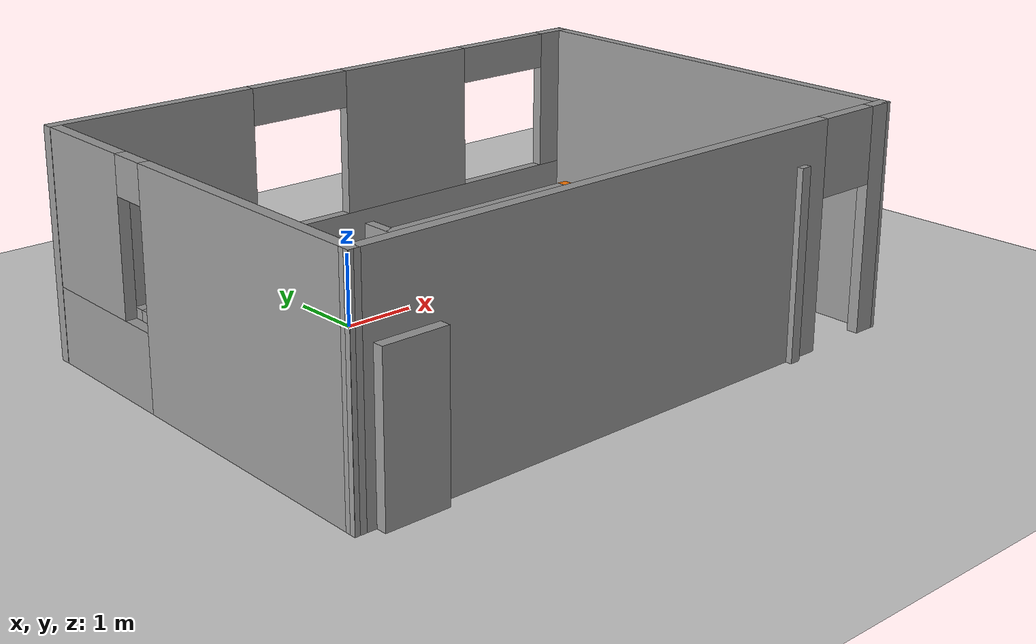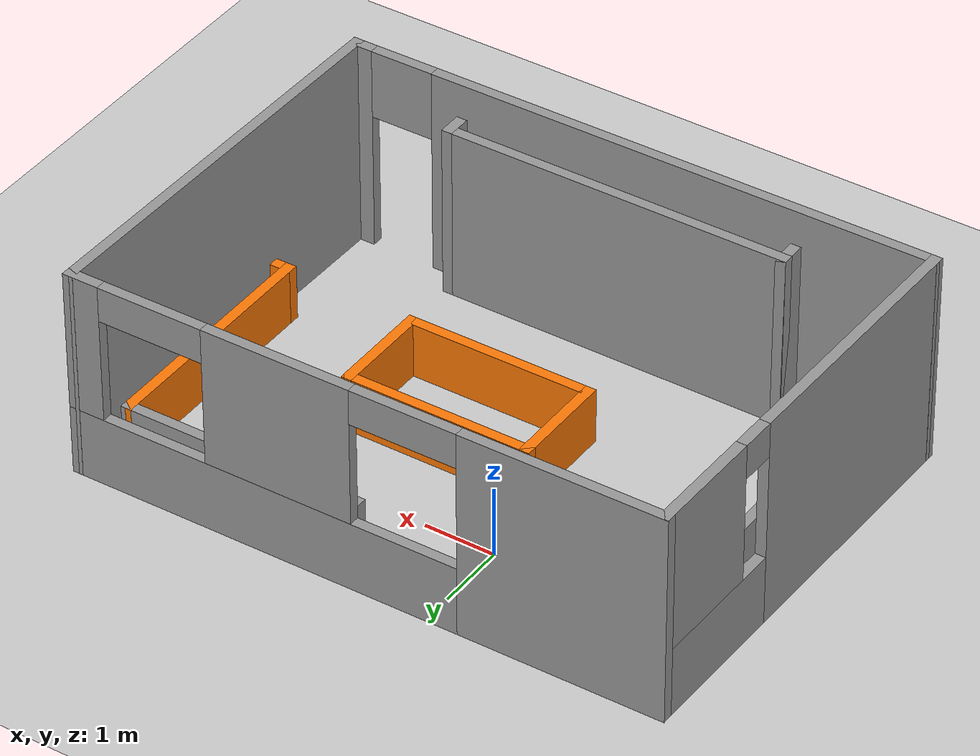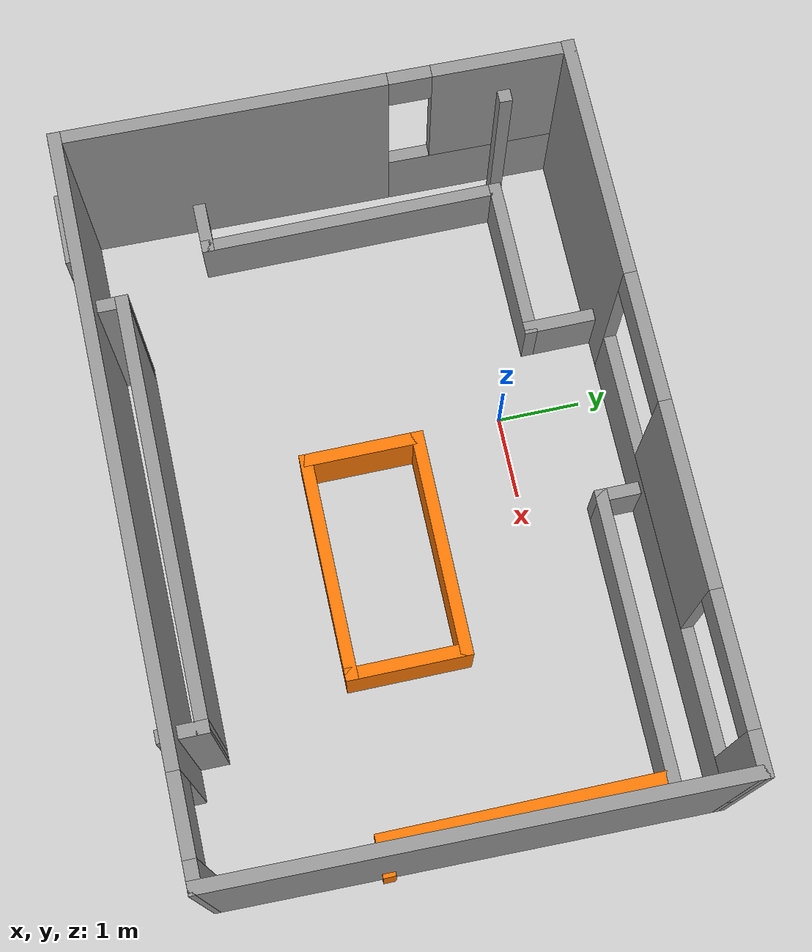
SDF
<sdf version="1.6">
 <world name="default">
  <light name="sun" type="directional">
   <pose>0 0 10 0 -0 0</pose>
   <diffuse>0.8 0.8 0.8 1</diffuse>
   <specular>0.1 0.1 0.1 1</specular>
   <attenuation>
    <range>1000</range>
    <constant>0.9</constant>
    <linear>0.01</linear>
    <quadratic>0.001</quadratic>
   </attenuation>
   <direction>-0.5 0.5 -1</direction>
  </light>
  <model name="ground_plane">
   <static>1</static>
   <link name="link">
    <collision name="collision">
     <geometry><plane><normal>0 0 1</normal><size>100 100</size></plane></geometry>
     <surface><friction><ode><mu>100</mu><mu2>50</mu2></ode></friction></surface>
    </collision>
    <visual name="visual">
     <cast_shadows>0</cast_shadows>
     <geometry><plane><normal>0 0 1</normal><size>100 100</size></plane></geometry>
     <material>
      <script><uri>file://media/materials/scripts/gazebo.material</uri><name>Gazebo/Grey</name></script>
     </material>
    </visual>
   </link>
  </model>
  <gravity>0 0 -9.8</gravity>
  <magnetic_field>6e-06 2.3e-05 -4.2e-05</magnetic_field>
  <atmosphere type="adiabatic"/>
  <physics name="default_physics" default="0" type="ode">
   <max_step_size>0.001</max_step_size>
   <real_time_factor>1</real_time_factor>
   <real_time_update_rate>1000</real_time_update_rate>
  </physics>
  <scene><ambient>0.4 0.4 0.4 1</ambient><background>0.7 0.7 0.7 1</background><shadows>1</shadows></scene>
  <spherical_coordinates>
   <surface_model>EARTH_WGS84</surface_model>
   <latitude_deg>0</latitude_deg>
   <longitude_deg>0</longitude_deg>
   <elevation>0</elevation>
   <heading_deg>0</heading_deg>
  </spherical_coordinates>
  <model name="room.world">
   <pose>0.880997 -1.5579 0 0 -0 0</pose>
   <link name="Door_0">
    <collision name="Door_0_Collision">
     <geometry><box><size>0.853739 0.2 2</size></box></geometry>
     <pose>0 0 1 0 -0 0</pose>
    </collision>
    <visual name="Door_0_Visual">
     <pose>0 0 1 0 -0 0</pose>
     <geometry><box><size>0.853739 0.2 2</size></box></geometry>
     <material>
      <script><uri>file://media/materials/scripts/gazebo.material</uri><name>Gazebo/Grey</name></script>
     </material>
    </visual>
    <pose>-3.58938 -3.02501 0 0 -0 0</pose>
   </link>
   <link name="Wall_0">
    <pose>0.042535 2.95873 0 0 -0 0.002754</pose>
    <visual name="Wall_0_Visual_0">
     <pose>-2.80953 0 1.5 0 -0 0</pose>
     <geometry><box><size>2.88094 0.15 3</size></box></geometry>
     <material>
      <script><uri>file://media/materials/scripts/gazebo.material</uri><name>Gazebo/Grey</name></script>
      <ambient>1 1 1 1</ambient>
     </material>
    </visual>
    <collision name="Wall_0_Collision_0">
     <geometry><box><size>2.88094 0.15 3</size></box></geometry>
     <pose>-2.80953 0 1.5 0 -0 0</pose>
    </collision>
    <visual name="Wall_0_Visual_1">
     <pose>1.44047 0 0.5 0 -0 0</pose>
     <geometry><box><size>5.61906 0.15 1</size></box></geometry>
     <material>
      <script><uri>file://media/materials/scripts/gazebo.material</uri><name>Gazebo/Grey</name></script>
      <ambient>1 1 1 1</ambient>
     </material>
    </visual>
    <collision name="Wall_0_Collision_1">
     <geometry><box><size>5.61906 0.15 1</size></box></geometry>
     <pose>1.44047 0 0.5 0 -0 0</pose>
    </collision>
    <visual name="Wall_0_Visual_2">
     <pose>1.18504 0 2 0 -0 0</pose>
     <geometry><box><size>2.10818 0.15 2</size></box></geometry>
     <material>
      <script><uri>file://media/materials/scripts/gazebo.material</uri><name>Gazebo/Grey</name></script>
      <ambient>1 1 1 1</ambient>
     </material>
    </visual>
    <collision name="Wall_0_Collision_2">
     <geometry><box><size>2.10818 0.15 2</size></box></geometry>
     <pose>1.18504 0 2 0 -0 0</pose>
    </collision>
    <visual name="Wall_0_Visual_3">
     <pose>3.99456 0 2 0 -0 0</pose>
     <geometry><box><size>0.510874 0.15 2</size></box></geometry>
     <material>
      <script><uri>file://media/materials/scripts/gazebo.material</uri><name>Gazebo/Grey</name></script>
      <ambient>1 1 1 1</ambient>
     </material>
    </visual>
    <collision name="Wall_0_Collision_3">
     <geometry><box><size>0.510874 0.15 2</size></box></geometry>
     <pose>3.99456 0 2 0 -0 0</pose>
    </collision>
    <visual name="Wall_0_Visual_4">
     <pose>-0.619056 0 2.75 0 -0 0</pose>
     <geometry><box><size>1.5 0.15 0.5</size></box></geometry>
     <material>
      <script><uri>file://media/materials/scripts/gazebo.material</uri><name>Gazebo/Grey</name></script>
      <ambient>1 1 1 1</ambient>
     </material>
    </visual>
    <collision name="Wall_0_Collision_4">
     <geometry><box><size>1.5 0.15 0.5</size></box></geometry>
     <pose>-0.619056 0 2.75 0 -0 0</pose>
    </collision>
    <visual name="Wall_0_Visual_5">
     <pose>2.98913 0 2.75 0 -0 0</pose>
     <geometry><box><size>1.5 0.15 0.5</size></box></geometry>
     <material>
      <script><uri>file://media/materials/scripts/gazebo.material</uri><name>Gazebo/Grey</name></script>
      <ambient>1 1 1 1</ambient>
     </material>
    </visual>
    <collision name="Wall_0_Collision_5">
     <geometry><box><size>1.5 0.15 0.5</size></box></geometry>
     <pose>2.98913 0 2.75 0 -0 0</pose>
    </collision>
   </link>
   <link name="Wall_1">
    <collision name="Wall_1_Collision">
     <geometry><box><size>6 0.15 3</size></box></geometry>
     <pose>0 0 1.5 0 -0 0</pose>
    </collision>
    <visual name="Wall_1_Visual">
     <pose>0 0 1.5 0 -0 0</pose>
     <geometry><box><size>6 0.15 3</size></box></geometry>
     <material>
      <script><uri>file://media/materials/scripts/gazebo.material</uri><name>Gazebo/Grey</name></script>
      <ambient>1 1 1 1</ambient>
     </material>
    </visual>
    <pose>4.17504 0.045227 0 0 0 -1.58533</pose>
   </link>
   <link name="Wall_16">
    <collision name="Wall_16_Collision">
     <geometry><box><size>0.5 0.15 2.5</size></box></geometry>
     <pose>0 0 1.25 0 -0 0</pose>
    </collision>
    <visual name="Wall_16_Visual">
     <pose>0 0 1.25 0 -0 0</pose>
     <geometry><box><size>0.5 0.15 2.5</size></box></geometry>
     <material>
      <script><uri>file://media/materials/scripts/gazebo.material</uri><name>Gazebo/Grey</name></script>
      <ambient>1 1 1 1</ambient>
     </material>
    </visual>
    <pose>-2.3575 -2.716 0 0 -0 1.5708</pose>
   </link>
   <link name="Wall_17">
    <collision name="Wall_17_Collision">
     <geometry><box><size>5 0.15 2.5</size></box></geometry>
     <pose>0 0 1.25 0 -0 0</pose>
    </collision>
    <visual name="Wall_17_Visual">
     <pose>0 0 1.25 0 -0 0</pose>
     <geometry><box><size>5 0.15 2.5</size></box></geometry>
     <material>
      <script><uri>file://media/materials/scripts/gazebo.material</uri><name>Gazebo/Grey</name></script>
      <ambient>1 1 1 1</ambient>
     </material>
    </visual>
    <pose>0.067499 -2.541 0 0 -0 0</pose>
   </link>
   <link name="Wall_18">
    <collision name="Wall_18_Collision">
     <geometry><box><size>0.58 0.15 2.5</size></box></geometry>
     <pose>0 0 1.25 0 -0 0</pose>
    </collision>
    <visual name="Wall_18_Visual">
     <pose>0 0 1.25 0 -0 0</pose>
     <geometry><box><size>0.58 0.15 2.5</size></box></geometry>
     <material>
      <script><uri>file://media/materials/scripts/gazebo.material</uri><name>Gazebo/Grey</name></script>
      <ambient>1 1 1 1</ambient>
     </material>
    </visual>
    <pose>2.4925 -2.756 0 0 0 -1.5708</pose>
   </link>
   <link name="Wall_2">
    <pose>-0.042465 -2.89677 0 0 0 -3.13752</pose>
    <visual name="Wall_2_Visual_0">
     <pose>-4.07215 0 1.5 0 -0 0</pose>
     <geometry><box><size>0.355708 0.15 3</size></box></geometry>
     <material>
      <script><uri>file://media/materials/scripts/gazebo.material</uri><name>Gazebo/Grey</name></script>
      <ambient>1 1 1 1</ambient>
     </material>
    </visual>
    <collision name="Wall_2_Collision_0">
     <geometry><box><size>0.355708 0.15 3</size></box></geometry>
     <pose>-4.07215 0 1.5 0 -0 0</pose>
    </collision>
    <visual name="Wall_2_Visual_1">
     <pose>0.627854 0 1.5 0 -0 0</pose>
     <geometry><box><size>7.24429 0.15 3</size></box></geometry>
     <material>
      <script><uri>file://media/materials/scripts/gazebo.material</uri><name>Gazebo/Grey</name></script>
      <ambient>1 1 1 1</ambient>
     </material>
    </visual>
    <collision name="Wall_2_Collision_1">
     <geometry><box><size>7.24429 0.15 3</size></box></geometry>
     <pose>0.627854 0 1.5 0 -0 0</pose>
    </collision>
    <visual name="Wall_2_Visual_2">
     <pose>-3.44429 0 2.5 0 -0 0</pose>
     <geometry><box><size>0.9 0.15 1</size></box></geometry>
     <material>
      <script><uri>file://media/materials/scripts/gazebo.material</uri><name>Gazebo/Grey</name></script>
      <ambient>1 1 1 1</ambient>
     </material>
    </visual>
    <collision name="Wall_2_Collision_2">
     <geometry><box><size>0.9 0.15 1</size></box></geometry>
     <pose>-3.44429 0 2.5 0 -0 0</pose>
    </collision>
   </link>
   <link name="Wall_20">
    <collision name="Wall_20_Collision">
     <geometry><box><size>0.5 0.15 0.8</size></box></geometry>
     <pose>0 0 0.4 0 -0 0</pose>
    </collision>
    <visual name="Wall_20_Visual">
     <pose>0 0 0.4 0 -0 0</pose>
     <geometry><box><size>0.5 0.15 0.8</size></box></geometry>
     <material>
      <script><uri>file://media/materials/scripts/gazebo.material</uri><name>Gazebo/Grey</name></script>
      <ambient>0.996078 0.47451 0.0196078 1</ambient>
     </material>
    </visual>
    <pose>4.03653 -0.924773 0 0 -0 3.14159</pose>
   </link>
   <link name="Wall_21">
    <collision name="Wall_21_Collision">
     <geometry><box><size>3.5 0.15 0.8</size></box></geometry>
     <pose>0 0 0.4 0 -0 0</pose>
    </collision>
    <visual name="Wall_21_Visual">
     <pose>0 0 0.4 0 -0 0</pose>
     <geometry><box><size>3.5 0.15 0.8</size></box></geometry>
     <material>
      <script><uri>file://media/materials/scripts/gazebo.material</uri><name>Gazebo/Grey</name></script>
      <ambient>0.996078 0.47451 0.0196078 1</ambient>
     </material>
    </visual>
    <pose>3.86153 0.750227 0 0 -0 1.5708</pose>
   </link>
   <link name="Wall_22">
    <collision name="Wall_22_Collision">
     <geometry><box><size>3.5 0.15 0.8</size></box></geometry>
     <pose>0 0 0.4 0 -0 0</pose>
    </collision>
    <visual name="Wall_22_Visual">
     <pose>0 0 0.4 0 -0 0</pose>
     <geometry><box><size>3.5 0.15 0.8</size></box></geometry>
     <material>
      <script><uri>file://media/materials/scripts/gazebo.material</uri><name>Gazebo/Grey</name></script>
      <ambient>1 1 1 1</ambient>
     </material>
    </visual>
    <pose>2.18654 2.42523 0 0 -0 3.14159</pose>
   </link>
   <link name="Wall_23">
    <collision name="Wall_23_Collision">
     <geometry><box><size>0.6 0.15 0.8</size></box></geometry>
     <pose>0 0 0.4 0 -0 0</pose>
    </collision>
    <visual name="Wall_23_Visual">
     <pose>0 0 0.4 0 -0 0</pose>
     <geometry><box><size>0.6 0.15 0.8</size></box></geometry>
     <material>
      <script><uri>file://media/materials/scripts/gazebo.material</uri><name>Gazebo/Grey</name></script>
      <ambient>1 1 1 1</ambient>
     </material>
    </visual>
    <pose>0.511535 2.65023 0 0 -0 1.5708</pose>
   </link>
   <link name="Wall_25">
    <collision name="Wall_25_Collision">
     <geometry><box><size>1 0.15 0.8</size></box></geometry>
     <pose>0 0 0.4 0 -0 0</pose>
    </collision>
    <visual name="Wall_25_Visual">
     <pose>0 0 0.4 0 -0 0</pose>
     <geometry><box><size>1 0.15 0.8</size></box></geometry>
     <material>
      <script><uri>file://media/materials/scripts/gazebo.material</uri><name>Gazebo/Grey</name></script>
      <ambient>1 1 1 1</ambient>
     </material>
    </visual>
    <pose>-1.70947 2.51323 0 0 0 -1.5708</pose>
   </link>
   <link name="Wall_28">
    <collision name="Wall_28_Collision">
     <geometry><box><size>2 0.15 0.8</size></box></geometry>
     <pose>0 0 0.4 0 -0 0</pose>
    </collision>
    <visual name="Wall_28_Visual">
     <pose>0 0 0.4 0 -0 0</pose>
     <geometry><box><size>2 0.15 0.8</size></box></geometry>
     <material>
      <script><uri>file://media/materials/scripts/gazebo.material</uri><name>Gazebo/Grey</name></script>
      <ambient>1 1 1 1</ambient>
     </material>
    </visual>
    <pose>-2.63447 2.08823 0 0 -0 3.14159</pose>
   </link>
   <link name="Wall_29">
    <collision name="Wall_29_Collision">
     <geometry><box><size>3.75 0.15 0.8</size></box></geometry>
     <pose>0 0 0.4 0 -0 0</pose>
    </collision>
    <visual name="Wall_29_Visual">
     <pose>0 0 0.4 0 -0 0</pose>
     <geometry><box><size>3.75 0.15 0.8</size></box></geometry>
     <material>
      <script><uri>file://media/materials/scripts/gazebo.material</uri><name>Gazebo/Grey</name></script>
      <ambient>1 1 1 1</ambient>
     </material>
    </visual>
    <pose>-3.55946 0.288227 0 0 0 -1.5708</pose>
   </link>
   <link name="Wall_3">
    <pose>-4.17246 0.011227 0 0 -0 1.55541</pose>
    <visual name="Wall_3_Visual_0">
     <pose>-1.07539 0 1.5 0 -0 0</pose>
     <geometry><box><size>3.85029 0.15 3</size></box></geometry>
     <material>
      <script><uri>file://media/materials/scripts/gazebo.material</uri><name>Gazebo/Grey</name></script>
      <ambient>1 1 1 1</ambient>
     </material>
    </visual>
    <collision name="Wall_3_Collision_0">
     <geometry><box><size>3.85029 0.15 3</size></box></geometry>
     <pose>-1.07539 0 1.5 0 -0 0</pose>
    </collision>
    <visual name="Wall_3_Visual_1">
     <pose>1.92515 0 0.5 0 -0 0</pose>
     <geometry><box><size>2.15077 0.15 1</size></box></geometry>
     <material>
      <script><uri>file://media/materials/scripts/gazebo.material</uri><name>Gazebo/Grey</name></script>
      <ambient>1 1 1 1</ambient>
     </material>
    </visual>
    <collision name="Wall_3_Collision_1">
     <geometry><box><size>2.15077 0.15 1</size></box></geometry>
     <pose>1.92515 0 0.5 0 -0 0</pose>
    </collision>
    <visual name="Wall_3_Visual_2">
     <pose>2.17515 0 2 0 -0 0</pose>
     <geometry><box><size>1.65077 0.15 2</size></box></geometry>
     <material>
      <script><uri>file://media/materials/scripts/gazebo.material</uri><name>Gazebo/Grey</name></script>
      <ambient>1 1 1 1</ambient>
     </material>
    </visual>
    <collision name="Wall_3_Collision_2">
     <geometry><box><size>1.65077 0.15 2</size></box></geometry>
     <pose>2.17515 0 2 0 -0 0</pose>
    </collision>
    <visual name="Wall_3_Visual_3">
     <pose>1.09976 0 2.75 0 -0 0</pose>
     <geometry><box><size>0.5 0.15 0.5</size></box></geometry>
     <material>
      <script><uri>file://media/materials/scripts/gazebo.material</uri><name>Gazebo/Grey</name></script>
      <ambient>1 1 1 1</ambient>
     </material>
    </visual>
    <collision name="Wall_3_Collision_3">
     <geometry><box><size>0.5 0.15 0.5</size></box></geometry>
     <pose>1.09976 0 2.75 0 -0 0</pose>
    </collision>
   </link>
   <link name="Wall_30">
    <collision name="Wall_30_Collision">
     <geometry><box><size>0.75 0.15 0.8</size></box></geometry>
     <pose>0 0 0.4 0 -0 0</pose>
    </collision>
    <visual name="Wall_30_Visual">
     <pose>0 0 0.4 0 -0 0</pose>
     <geometry><box><size>0.75 0.15 0.8</size></box></geometry>
     <material>
      <script><uri>file://media/materials/scripts/gazebo.material</uri><name>Gazebo/Grey</name></script>
      <ambient>1 1 1 1</ambient>
     </material>
    </visual>
    <pose>-3.85947 -1.51177 0 0 -0 3.14159</pose>
   </link>
   <link name="Wall_36">
    <collision name="Wall_36_Collision">
     <geometry><box><size>2.75 0.15 0.8</size></box></geometry>
     <pose>0 0 0.4 0 -0 0</pose>
    </collision>
    <visual name="Wall_36_Visual">
     <pose>0 0 0.4 0 -0 0</pose>
     <geometry><box><size>2.75 0.15 0.8</size></box></geometry>
     <material>
      <script><uri>file://media/materials/scripts/gazebo.material</uri><name>Gazebo/Grey</name></script>
      <ambient>0.996078 0.47451 0.0196078 1</ambient>
     </material>
    </visual>
    <pose>0.663535 -0.878773 0 0 -0 0</pose>
   </link>
   <link name="Wall_37">
    <collision name="Wall_37_Collision">
     <geometry><box><size>1.5 0.15 0.8</size></box></geometry>
     <pose>0 0 0.4 0 -0 0</pose>
    </collision>
    <visual name="Wall_37_Visual">
     <pose>0 0 0.4 0 -0 0</pose>
     <geometry><box><size>1.5 0.15 0.8</size></box></geometry>
     <material>
      <script><uri>file://media/materials/scripts/gazebo.material</uri><name>Gazebo/Grey</name></script>
      <ambient>0.996078 0.47451 0.0196078 1</ambient>
     </material>
    </visual>
    <pose>1.96354 -0.203773 0 0 -0 1.5708</pose>
   </link>
   <link name="Wall_38">
    <collision name="Wall_38_Collision">
     <geometry><box><size>2.75 0.15 0.8</size></box></geometry>
     <pose>0 0 0.4 0 -0 0</pose>
    </collision>
    <visual name="Wall_38_Visual">
     <pose>0 0 0.4 0 -0 0</pose>
     <geometry><box><size>2.75 0.15 0.8</size></box></geometry>
     <material>
      <script><uri>file://media/materials/scripts/gazebo.material</uri><name>Gazebo/Grey</name></script>
      <ambient>0.996078 0.47451 0.0196078 1</ambient>
     </material>
    </visual>
    <pose>0.663535 0.471227 0 0 -0 3.14159</pose>
   </link>
   <link name="Wall_39">
    <collision name="Wall_39_Collision">
     <geometry><box><size>1.5 0.15 0.8</size></box></geometry>
     <pose>0 0 0.4 0 -0 0</pose>
    </collision>
    <visual name="Wall_39_Visual">
     <pose>0 0 0.4 0 -0 0</pose>
     <geometry><box><size>1.5 0.15 0.8</size></box></geometry>
     <material>
      <script><uri>file://media/materials/scripts/gazebo.material</uri><name>Gazebo/Grey</name></script>
      <ambient>0.996078 0.47451 0.0196078 1</ambient>
     </material>
    </visual>
    <pose>-0.636465 -0.203773 0 0 0 -1.5708</pose>
   </link>
   <link name="Wall_5">
    <collision name="Wall_5_Collision">
     <geometry><box><size>0.15 0.15 2.5</size></box></geometry>
     <pose>0 0 1.25 0 -0 0</pose>
    </collision>
    <visual name="Wall_5_Visual">
     <pose>0 0 1.25 0 -0 0</pose>
     <geometry><box><size>0.15 0.15 2.5</size></box></geometry>
     <material>
      <script><uri>file://media/materials/scripts/gazebo.material</uri><name>Gazebo/Grey</name></script>
      <ambient>1 1 1 1</ambient>
     </material>
    </visual>
    <pose>-3.92694 2.18945 0 0 -0 0</pose>
   </link>
   <static>1</static>
  </model>
 </world>
</sdf>
